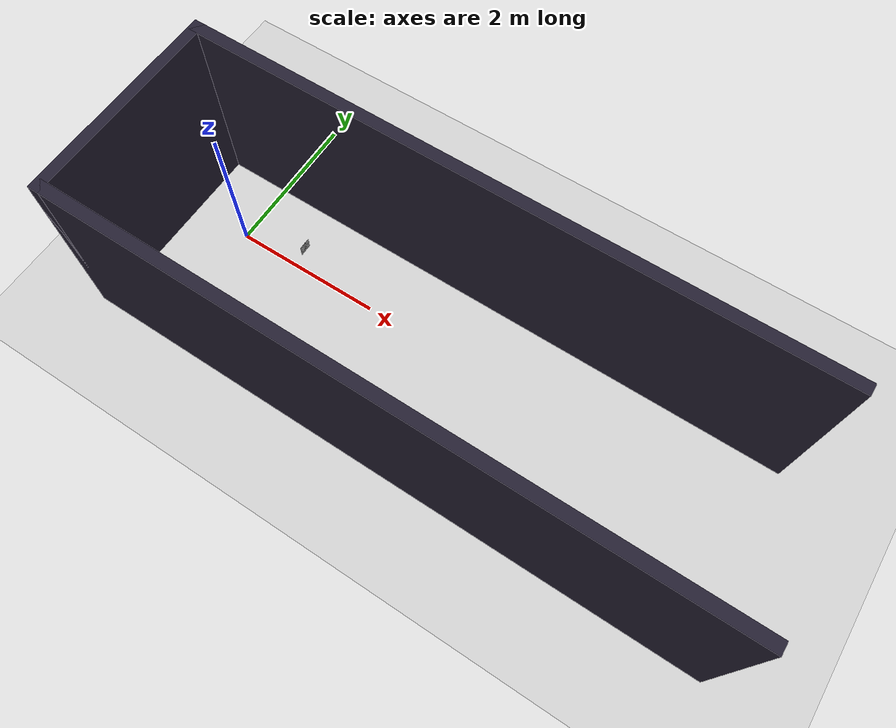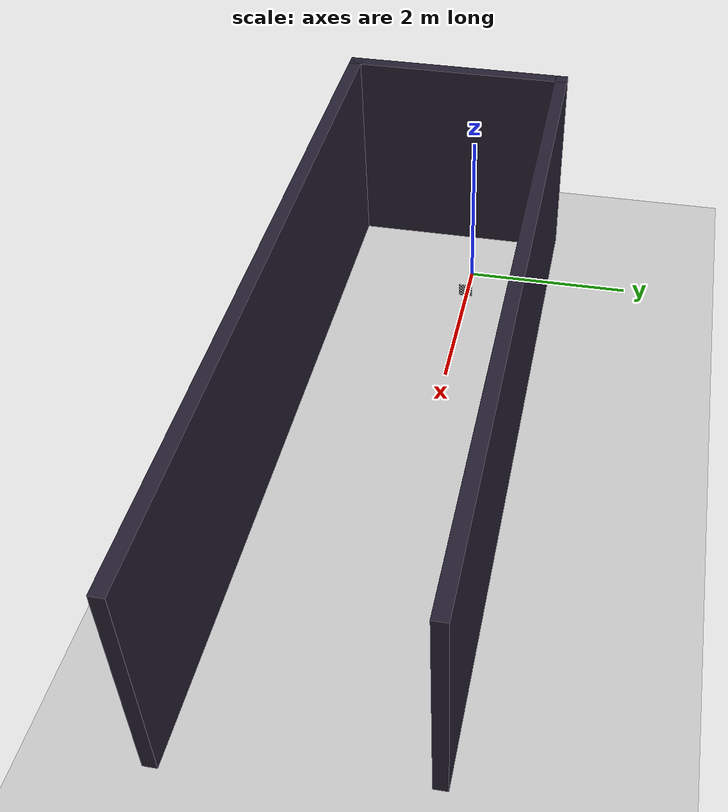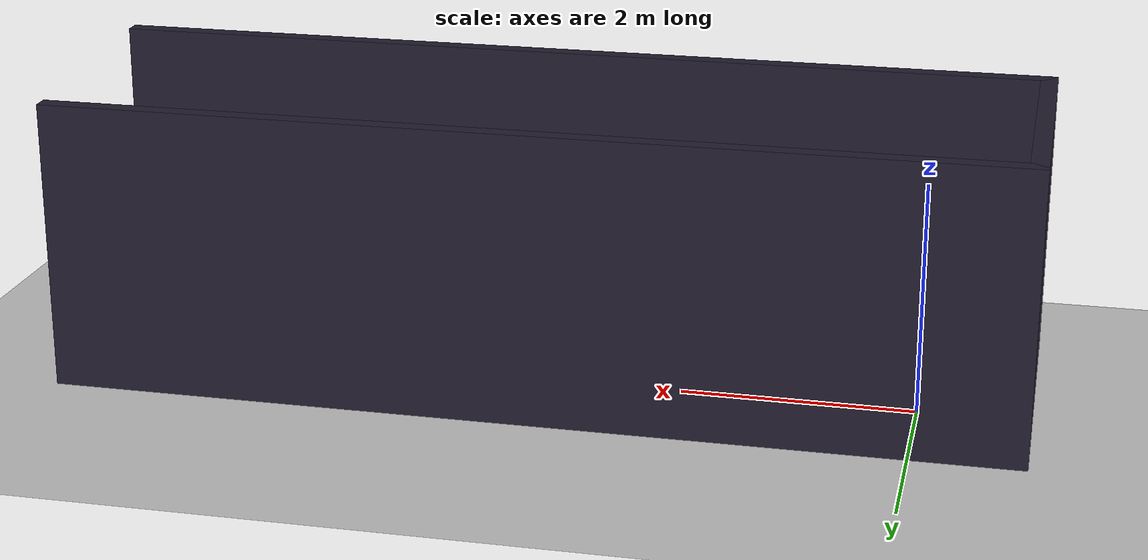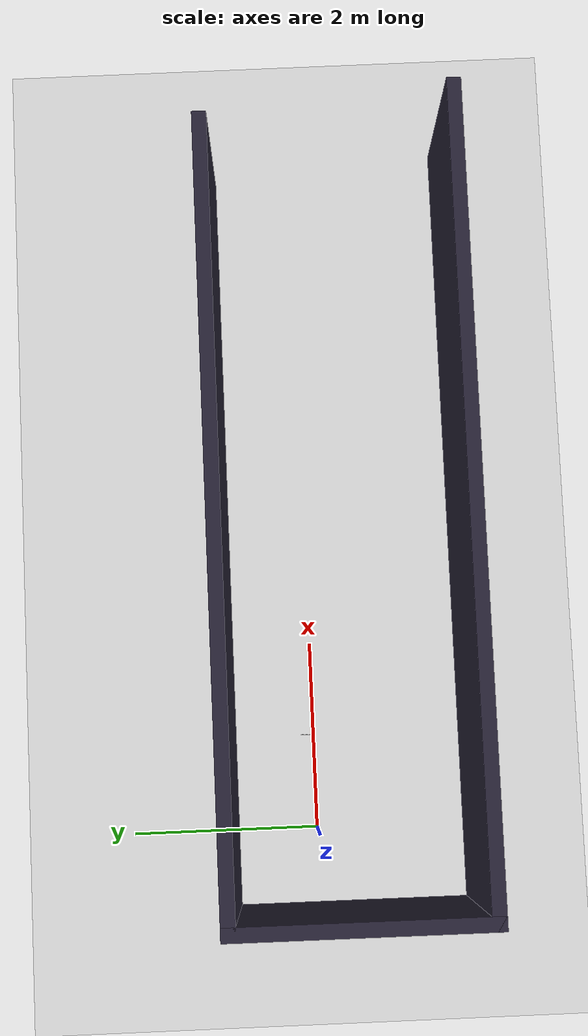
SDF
<sdf version="1.7">
 <world name="default">
  <scene>
   <sky><clouds><speed>12</speed></clouds></sky>
   <ambient>0.4 0.4 0.4 1</ambient>
   <background>0.7 0.7 0.7 1</background>
   <shadows>0</shadows>
  </scene>
  <light name="sun" type="directional">
   <pose>0 0 10 0 -0 0</pose>
   <diffuse>0.8 0.8 0.8 1</diffuse>
   <specular>0.2 0.2 0.2 1</specular>
   <attenuation>
    <range>1000</range>
    <constant>0.9</constant>
    <linear>0.01</linear>
    <quadratic>0.001</quadratic>
   </attenuation>
   <direction>-0.5 0.1 -0.9</direction>
   <spot><inner_angle>0</inner_angle><outer_angle>0</outer_angle><falloff>0</falloff></spot>
  </light>
  <model name="ground_plane">
   <static>1</static>
   <link name="link">
    <collision name="collision">
     <geometry><plane><normal>0 0 1</normal><size>100 100</size></plane></geometry>
     <surface><friction><ode><mu>100</mu><mu2>50</mu2></ode></friction></surface>
    </collision>
    <visual name="visual">
     <cast_shadows>0</cast_shadows>
     <geometry><plane><normal>0 0 1</normal><size>100 100</size></plane></geometry>
     <material>
      <script><uri>file://media/materials/scripts/gazebo.material</uri><name>Gazebo/Grey</name></script>
     </material>
    </visual>
   </link>
  </model>
  <model name="checkerboard">
   <pose>1 0 0.6 3.14159 1.57079 3.14159</pose>
   <static>1</static>
   <link name="checkerboard">
    <inertial>
     <mass>0.01</mass>
     <inertia><ixx>0.083</ixx><ixy>0</ixy><ixz>0</ixz><iyy>0.083</iyy><iyz>0</iyz><izz>0.083</izz></inertia>
    </inertial>
    <collision name="collision"><geometry><box><size>0.02 0.02 0.005</size></box></geometry></collision>
    <visual name="sqr11">
     <geometry><box><size>0.02 0.02 0.005</size></box></geometry>
     <material>
      <ambient>0 0 0 1</ambient>
      <diffuse>0 0 0 1</diffuse>
      <specular>0.1 0.1 0.1 1</specular>
      <emissive>0 0 0 0</emissive>
     </material>
    </visual>
    <visual name="sqr12">
     <pose>0.02 0 0 0 -0 0</pose>
     <geometry><box><size>0.02 0.02 0.005</size></box></geometry>
     <material>
      <ambient>1 1 1 1</ambient>
      <diffuse>1 1 1 1</diffuse>
      <specular>0.1 0.1 0.1 1</specular>
      <emissive>0 0 0 0</emissive>
     </material>
    </visual>
    <visual name="sqr13">
     <pose>0.04 0 0 0 -0 0</pose>
     <geometry><box><size>0.02 0.02 0.005</size></box></geometry>
     <material>
      <ambient>0 0 0 1</ambient>
      <diffuse>0 0 0 1</diffuse>
      <specular>0.1 0.1 0.1 1</specular>
      <emissive>0 0 0 0</emissive>
     </material>
    </visual>
    <visual name="sqr14">
     <pose>0.06 0 0 0 -0 0</pose>
     <geometry><box><size>0.02 0.02 0.005</size></box></geometry>
     <material>
      <ambient>1 1 1 1</ambient>
      <diffuse>1 1 1 1</diffuse>
      <specular>0.1 0.1 0.1 1</specular>
      <emissive>0 0 0 0</emissive>
     </material>
    </visual>
    <visual name="sqr15">
     <pose>0.08 0 0 0 -0 0</pose>
     <geometry><box><size>0.02 0.02 0.005</size></box></geometry>
     <material>
      <ambient>0 0 0 1</ambient>
      <diffuse>0 0 0 1</diffuse>
      <specular>0.1 0.1 0.1 1</specular>
      <emissive>0 0 0 0</emissive>
     </material>
    </visual>
    <visual name="sqr16">
     <pose>0.1 0 0 0 -0 0</pose>
     <geometry><box><size>0.02 0.02 0.005</size></box></geometry>
     <material>
      <ambient>1 1 1 1</ambient>
      <diffuse>1 1 1 1</diffuse>
      <specular>0.1 0.1 0.1 1</specular>
      <emissive>0 0 0 0</emissive>
     </material>
    </visual>
    <visual name="sqr17">
     <pose>0.12 0 0 0 -0 0</pose>
     <geometry><box><size>0.02 0.02 0.005</size></box></geometry>
     <material>
      <ambient>0 0 0 1</ambient>
      <diffuse>0 0 0 1</diffuse>
      <specular>0.1 0.1 0.1 1</specular>
      <emissive>0 0 0 0</emissive>
     </material>
    </visual>
    <visual name="sqr18">
     <pose>0.14 0 0 0 -0 0</pose>
     <geometry><box><size>0.02 0.02 0.005</size></box></geometry>
     <material>
      <ambient>1 1 1 1</ambient>
      <diffuse>1 1 1 1</diffuse>
      <specular>0.1 0.1 0.1 1</specular>
      <emissive>0 0 0 0</emissive>
     </material>
    </visual>
    <visual name="sqr21">
     <pose>0 0.02 0 0 -0 0</pose>
     <geometry><box><size>0.02 0.02 0.005</size></box></geometry>
     <material>
      <ambient>1 1 1 1</ambient>
      <diffuse>1 1 1 1</diffuse>
      <specular>0.1 0.1 0.1 1</specular>
      <emissive>0 0 0 0</emissive>
     </material>
    </visual>
    <visual name="sqr22">
     <pose>0.02 0.02 0 0 -0 0</pose>
     <geometry><box><size>0.02 0.02 0.005</size></box></geometry>
     <material>
      <ambient>0 0 0 1</ambient>
      <diffuse>0 0 0 1</diffuse>
      <specular>0.1 0.1 0.1 1</specular>
      <emissive>0 0 0 0</emissive>
     </material>
    </visual>
    <visual name="sqr23">
     <pose>0.04 0.02 0 0 -0 0</pose>
     <geometry><box><size>0.02 0.02 0.005</size></box></geometry>
     <material>
      <ambient>1 1 1 1</ambient>
      <diffuse>1 1 1 1</diffuse>
      <specular>0.1 0.1 0.1 1</specular>
      <emissive>0 0 0 0</emissive>
     </material>
    </visual>
    <visual name="sqr24">
     <pose>0.06 0.02 0 0 -0 0</pose>
     <geometry><box><size>0.02 0.02 0.005</size></box></geometry>
     <material>
      <ambient>0 0 0 1</ambient>
      <diffuse>0 0 0 1</diffuse>
      <specular>0.1 0.1 0.1 1</specular>
      <emissive>0 0 0 0</emissive>
     </material>
    </visual>
    <visual name="sqr25">
     <pose>0.08 0.02 0 0 -0 0</pose>
     <geometry><box><size>0.02 0.02 0.005</size></box></geometry>
     <material>
      <ambient>1 1 1 1</ambient>
      <diffuse>1 1 1 1</diffuse>
      <specular>0.1 0.1 0.1 1</specular>
      <emissive>0 0 0 0</emissive>
     </material>
    </visual>
    <visual name="sqr26">
     <pose>0.1 0.02 0 0 -0 0</pose>
     <geometry><box><size>0.02 0.02 0.005</size></box></geometry>
     <material>
      <ambient>0 0 0 1</ambient>
      <diffuse>0 0 0 1</diffuse>
      <specular>0.1 0.1 0.1 1</specular>
      <emissive>0 0 0 0</emissive>
     </material>
    </visual>
    <visual name="sqr27">
     <pose>0.12 0.02 0 0 -0 0</pose>
     <geometry><box><size>0.02 0.02 0.005</size></box></geometry>
     <material>
      <ambient>1 1 1 1</ambient>
      <diffuse>1 1 1 1</diffuse>
      <specular>0.1 0.1 0.1 1</specular>
      <emissive>0 0 0 0</emissive>
     </material>
    </visual>
    <visual name="sqr28">
     <pose>0.14 0.02 0 0 -0 0</pose>
     <geometry><box><size>0.02 0.02 0.005</size></box></geometry>
     <material>
      <ambient>0 0 0 1</ambient>
      <diffuse>0 0 0 1</diffuse>
      <specular>0.1 0.1 0.1 1</specular>
      <emissive>0 0 0 0</emissive>
     </material>
    </visual>
    <visual name="sqr31">
     <pose>0 0.04 0 0 -0 0</pose>
     <geometry><box><size>0.02 0.02 0.005</size></box></geometry>
     <material>
      <ambient>0 0 0 1</ambient>
      <diffuse>0 0 0 1</diffuse>
      <specular>0.1 0.1 0.1 1</specular>
      <emissive>0 0 0 0</emissive>
     </material>
    </visual>
    <visual name="sqr32">
     <pose>0.02 0.04 0 0 -0 0</pose>
     <geometry><box><size>0.02 0.02 0.005</size></box></geometry>
     <material>
      <ambient>1 1 1 1</ambient>
      <diffuse>1 1 1 1</diffuse>
      <specular>0.1 0.1 0.1 1</specular>
      <emissive>0 0 0 0</emissive>
     </material>
    </visual>
    <visual name="sqr33">
     <pose>0.04 0.04 0 0 -0 0</pose>
     <geometry><box><size>0.02 0.02 0.005</size></box></geometry>
     <material>
      <ambient>0 0 0 1</ambient>
      <diffuse>0 0 0 1</diffuse>
      <specular>0.1 0.1 0.1 1</specular>
      <emissive>0 0 0 0</emissive>
     </material>
    </visual>
    <visual name="sqr34">
     <pose>0.06 0.04 0 0 -0 0</pose>
     <geometry><box><size>0.02 0.02 0.005</size></box></geometry>
     <material>
      <ambient>1 1 1 1</ambient>
      <diffuse>1 1 1 1</diffuse>
      <specular>0.1 0.1 0.1 1</specular>
      <emissive>0 0 0 0</emissive>
     </material>
    </visual>
    <visual name="sqr35">
     <pose>0.08 0.04 0 0 -0 0</pose>
     <geometry><box><size>0.02 0.02 0.005</size></box></geometry>
     <material>
      <ambient>0 0 0 1</ambient>
      <diffuse>0 0 0 1</diffuse>
      <specular>0.1 0.1 0.1 1</specular>
      <emissive>0 0 0 0</emissive>
     </material>
    </visual>
    <visual name="sqr36">
     <pose>0.1 0.04 0 0 -0 0</pose>
     <geometry><box><size>0.02 0.02 0.005</size></box></geometry>
     <material>
      <ambient>1 1 1 1</ambient>
      <diffuse>1 1 1 1</diffuse>
      <specular>0.1 0.1 0.1 1</specular>
      <emissive>0 0 0 0</emissive>
     </material>
    </visual>
    <visual name="sqr37">
     <pose>0.12 0.04 0 0 -0 0</pose>
     <geometry><box><size>0.02 0.02 0.005</size></box></geometry>
     <material>
      <ambient>0 0 0 1</ambient>
      <diffuse>0 0 0 1</diffuse>
      <specular>0.1 0.1 0.1 1</specular>
      <emissive>0 0 0 0</emissive>
     </material>
    </visual>
    <visual name="sqr38">
     <pose>0.14 0.04 0 0 -0 0</pose>
     <geometry><box><size>0.02 0.02 0.005</size></box></geometry>
     <material>
      <ambient>1 1 1 1</ambient>
      <diffuse>1 1 1 1</diffuse>
      <specular>0.1 0.1 0.1 1</specular>
      <emissive>0 0 0 0</emissive>
     </material>
    </visual>
    <visual name="sqr51">
     <pose>0 0.08 0 0 -0 0</pose>
     <geometry><box><size>0.02 0.02 0.005</size></box></geometry>
     <material>
      <ambient>0 0 0 1</ambient>
      <diffuse>0 0 0 1</diffuse>
      <specular>0.1 0.1 0.1 1</specular>
      <emissive>0 0 0 0</emissive>
     </material>
    </visual>
    <visual name="sqr52">
     <pose>0.02 0.08 0 0 -0 0</pose>
     <geometry><box><size>0.02 0.02 0.005</size></box></geometry>
     <material>
      <ambient>1 1 1 1</ambient>
      <diffuse>1 1 1 1</diffuse>
      <specular>0.1 0.1 0.1 1</specular>
      <emissive>0 0 0 0</emissive>
     </material>
    </visual>
    <visual name="sqr53">
     <pose>0.04 0.08 0 0 -0 0</pose>
     <geometry><box><size>0.02 0.02 0.005</size></box></geometry>
     <material>
      <ambient>0 0 0 1</ambient>
      <diffuse>0 0 0 1</diffuse>
      <specular>0.1 0.1 0.1 1</specular>
      <emissive>0 0 0 0</emissive>
     </material>
    </visual>
    <visual name="sqr54">
     <pose>0.06 0.08 0 0 -0 0</pose>
     <geometry><box><size>0.02 0.02 0.005</size></box></geometry>
     <material>
      <ambient>1 1 1 1</ambient>
      <diffuse>1 1 1 1</diffuse>
      <specular>0.1 0.1 0.1 1</specular>
      <emissive>0 0 0 0</emissive>
     </material>
    </visual>
    <visual name="sqr55">
     <pose>0.08 0.08 0 0 -0 0</pose>
     <geometry><box><size>0.02 0.02 0.005</size></box></geometry>
     <material>
      <ambient>0 0 0 1</ambient>
      <diffuse>0 0 0 1</diffuse>
      <specular>0.1 0.1 0.1 1</specular>
      <emissive>0 0 0 0</emissive>
     </material>
    </visual>
    <visual name="sqr56">
     <pose>0.1 0.08 0 0 -0 0</pose>
     <geometry><box><size>0.02 0.02 0.005</size></box></geometry>
     <material>
      <ambient>1 1 1 1</ambient>
      <diffuse>1 1 1 1</diffuse>
      <specular>0.1 0.1 0.1 1</specular>
      <emissive>0 0 0 0</emissive>
     </material>
    </visual>
    <visual name="sqr57">
     <pose>0.12 0.08 0 0 -0 0</pose>
     <geometry><box><size>0.02 0.02 0.005</size></box></geometry>
     <material>
      <ambient>0 0 0 1</ambient>
      <diffuse>0 0 0 1</diffuse>
      <specular>0.1 0.1 0.1 1</specular>
      <emissive>0 0 0 0</emissive>
     </material>
    </visual>
    <visual name="sqr58">
     <pose>0.14 0.08 0 0 -0 0</pose>
     <geometry><box><size>0.02 0.02 0.005</size></box></geometry>
     <material>
      <ambient>1 1 1 1</ambient>
      <diffuse>1 1 1 1</diffuse>
      <specular>0.1 0.1 0.1 1</specular>
      <emissive>0 0 0 0</emissive>
     </material>
    </visual>
    <visual name="sqr71">
     <pose>0 0.12 0 0 -0 0</pose>
     <geometry><box><size>0.02 0.02 0.005</size></box></geometry>
     <material>
      <ambient>0 0 0 1</ambient>
      <diffuse>0 0 0 1</diffuse>
      <specular>0.1 0.1 0.1 1</specular>
      <emissive>0 0 0 0</emissive>
     </material>
    </visual>
    <visual name="sqr72">
     <pose>0.02 0.12 0 0 -0 0</pose>
     <geometry><box><size>0.02 0.02 0.005</size></box></geometry>
     <material>
      <ambient>1 1 1 1</ambient>
      <diffuse>1 1 1 1</diffuse>
      <specular>0.1 0.1 0.1 1</specular>
      <emissive>0 0 0 0</emissive>
     </material>
    </visual>
    <visual name="sqr73">
     <pose>0.04 0.12 0 0 -0 0</pose>
     <geometry><box><size>0.02 0.02 0.005</size></box></geometry>
     <material>
      <ambient>0 0 0 1</ambient>
      <diffuse>0 0 0 1</diffuse>
      <specular>0.1 0.1 0.1 1</specular>
      <emissive>0 0 0 0</emissive>
     </material>
    </visual>
    <visual name="sqr74">
     <pose>0.06 0.12 0 0 -0 0</pose>
     <geometry><box><size>0.02 0.02 0.005</size></box></geometry>
     <material>
      <ambient>1 1 1 1</ambient>
      <diffuse>1 1 1 1</diffuse>
      <specular>0.1 0.1 0.1 1</specular>
      <emissive>0 0 0 0</emissive>
     </material>
    </visual>
    <visual name="sqr75">
     <pose>0.08 0.12 0 0 -0 0</pose>
     <geometry><box><size>0.02 0.02 0.005</size></box></geometry>
     <material>
      <ambient>0 0 0 1</ambient>
      <diffuse>0 0 0 1</diffuse>
      <specular>0.1 0.1 0.1 1</specular>
      <emissive>0 0 0 0</emissive>
     </material>
    </visual>
    <visual name="sqr76">
     <pose>0.1 0.12 0 0 -0 0</pose>
     <geometry><box><size>0.02 0.02 0.005</size></box></geometry>
     <material>
      <ambient>1 1 1 1</ambient>
      <diffuse>1 1 1 1</diffuse>
      <specular>0.1 0.1 0.1 1</specular>
      <emissive>0 0 0 0</emissive>
     </material>
    </visual>
    <visual name="sqr77">
     <pose>0.12 0.12 0 0 -0 0</pose>
     <geometry><box><size>0.02 0.02 0.005</size></box></geometry>
     <material>
      <ambient>0 0 0 1</ambient>
      <diffuse>0 0 0 1</diffuse>
      <specular>0.1 0.1 0.1 1</specular>
      <emissive>0 0 0 0</emissive>
     </material>
    </visual>
    <visual name="sqr78">
     <pose>0.14 0.12 0 0 -0 0</pose>
     <geometry><box><size>0.02 0.02 0.005</size></box></geometry>
     <material>
      <ambient>1 1 1 1</ambient>
      <diffuse>1 1 1 1</diffuse>
      <specular>0.1 0.1 0.1 1</specular>
      <emissive>0 0 0 0</emissive>
     </material>
    </visual>
    <visual name="sqr81">
     <pose>0 0.14 0 0 -0 0</pose>
     <geometry><box><size>0.02 0.02 0.005</size></box></geometry>
     <material>
      <ambient>1 1 1 1</ambient>
      <diffuse>1 1 1 1</diffuse>
      <specular>0.1 0.1 0.1 1</specular>
      <emissive>0 0 0 0</emissive>
     </material>
    </visual>
    <visual name="sqr82">
     <pose>0.02 0.14 0 0 -0 0</pose>
     <geometry><box><size>0.02 0.02 0.005</size></box></geometry>
     <material>
      <ambient>0 0 0 1</ambient>
      <diffuse>0 0 0 1</diffuse>
      <specular>0.1 0.1 0.1 1</specular>
      <emissive>0 0 0 0</emissive>
     </material>
    </visual>
    <visual name="sqr83">
     <pose>0.04 0.14 0 0 -0 0</pose>
     <geometry><box><size>0.02 0.02 0.005</size></box></geometry>
     <material>
      <ambient>1 1 1 1</ambient>
      <diffuse>1 1 1 1</diffuse>
      <specular>0.1 0.1 0.1 1</specular>
      <emissive>0 0 0 0</emissive>
     </material>
    </visual>
    <visual name="sqr84">
     <pose>0.06 0.14 0 0 -0 0</pose>
     <geometry><box><size>0.02 0.02 0.005</size></box></geometry>
     <material>
      <ambient>0 0 0 1</ambient>
      <diffuse>0 0 0 1</diffuse>
      <specular>0.1 0.1 0.1 1</specular>
      <emissive>0 0 0 0</emissive>
     </material>
    </visual>
    <visual name="sqr85">
     <pose>0.08 0.14 0 0 -0 0</pose>
     <geometry><box><size>0.02 0.02 0.005</size></box></geometry>
     <material>
      <ambient>1 1 1 1</ambient>
      <diffuse>1 1 1 1</diffuse>
      <specular>0.1 0.1 0.1 1</specular>
      <emissive>0 0 0 0</emissive>
     </material>
    </visual>
    <visual name="sqr86">
     <pose>0.1 0.14 0 0 -0 0</pose>
     <geometry><box><size>0.02 0.02 0.005</size></box></geometry>
     <material>
      <ambient>0 0 0 1</ambient>
      <diffuse>0 0 0 1</diffuse>
      <specular>0.1 0.1 0.1 1</specular>
      <emissive>0 0 0 0</emissive>
     </material>
    </visual>
    <visual name="sqr87">
     <pose>0.12 0.14 0 0 -0 0</pose>
     <geometry><box><size>0.02 0.02 0.005</size></box></geometry>
     <material>
      <ambient>1 1 1 1</ambient>
      <diffuse>1 1 1 1</diffuse>
      <specular>0.1 0.1 0.1 1</specular>
      <emissive>0 0 0 0</emissive>
     </material>
    </visual>
    <visual name="sqr88">
     <pose>0.14 0.14 0 0 -0 0</pose>
     <geometry><box><size>0.02 0.02 0.005</size></box></geometry>
     <material>
      <ambient>0 0 0 1</ambient>
      <diffuse>0 0 0 1</diffuse>
      <specular>0.1 0.1 0.1 1</specular>
      <emissive>0 0 0 0</emissive>
     </material>
    </visual>
    <visual name="sqr41">
     <pose>0 0.06 0 0 -0 0</pose>
     <geometry><box><size>0.02 0.02 0.005</size></box></geometry>
     <material>
      <ambient>1 1 1 1</ambient>
      <diffuse>1 1 1 1</diffuse>
      <specular>0.1 0.1 0.1 1</specular>
      <emissive>0 0 0 0</emissive>
     </material>
    </visual>
    <visual name="sqr42">
     <pose>0.02 0.06 0 0 -0 0</pose>
     <geometry><box><size>0.02 0.02 0.005</size></box></geometry>
     <material>
      <ambient>0 0 0 1</ambient>
      <diffuse>0 0 0 1</diffuse>
      <specular>0.1 0.1 0.1 1</specular>
      <emissive>0 0 0 0</emissive>
     </material>
    </visual>
    <visual name="sqr43">
     <pose>0.04 0.06 0 0 -0 0</pose>
     <geometry><box><size>0.02 0.02 0.005</size></box></geometry>
     <material>
      <ambient>1 1 1 1</ambient>
      <diffuse>1 1 1 1</diffuse>
      <specular>0.1 0.1 0.1 1</specular>
      <emissive>0 0 0 0</emissive>
     </material>
    </visual>
    <visual name="sqr44">
     <pose>0.06 0.06 0 0 -0 0</pose>
     <geometry><box><size>0.02 0.02 0.005</size></box></geometry>
     <material>
      <ambient>0 0 0 1</ambient>
      <diffuse>0 0 0 1</diffuse>
      <specular>0.1 0.1 0.1 1</specular>
      <emissive>0 0 0 0</emissive>
     </material>
    </visual>
    <visual name="sqr45">
     <pose>0.08 0.06 0 0 -0 0</pose>
     <geometry><box><size>0.02 0.02 0.005</size></box></geometry>
     <material>
      <ambient>1 1 1 1</ambient>
      <diffuse>1 1 1 1</diffuse>
      <specular>0.1 0.1 0.1 1</specular>
      <emissive>0 0 0 0</emissive>
     </material>
    </visual>
    <visual name="sqr46">
     <pose>0.1 0.06 0 0 -0 0</pose>
     <geometry><box><size>0.02 0.02 0.005</size></box></geometry>
     <material>
      <ambient>0 0 0 1</ambient>
      <diffuse>0 0 0 1</diffuse>
      <specular>0.1 0.1 0.1 1</specular>
      <emissive>0 0 0 0</emissive>
     </material>
    </visual>
    <visual name="sqr47">
     <pose>0.12 0.06 0 0 -0 0</pose>
     <geometry><box><size>0.02 0.02 0.005</size></box></geometry>
     <material>
      <ambient>1 1 1 1</ambient>
      <diffuse>1 1 1 1</diffuse>
      <specular>0.1 0.1 0.1 1</specular>
      <emissive>0 0 0 0</emissive>
     </material>
    </visual>
    <visual name="sqr48">
     <pose>0.14 0.06 0 0 -0 0</pose>
     <geometry><box><size>0.02 0.02 0.005</size></box></geometry>
     <material>
      <ambient>0 0 0 1</ambient>
      <diffuse>0 0 0 1</diffuse>
      <specular>0.1 0.1 0.1 1</specular>
      <emissive>0 0 0 0</emissive>
     </material>
    </visual>
    <visual name="sqr61">
     <pose>0 0.1 0 0 -0 0</pose>
     <geometry><box><size>0.02 0.02 0.005</size></box></geometry>
     <material>
      <ambient>1 1 1 1</ambient>
      <diffuse>1 1 1 1</diffuse>
      <specular>0.1 0.1 0.1 1</specular>
      <emissive>0 0 0 0</emissive>
     </material>
    </visual>
    <visual name="sqr62">
     <pose>0.02 0.1 0 0 -0 0</pose>
     <geometry><box><size>0.02 0.02 0.005</size></box></geometry>
     <material>
      <ambient>0 0 0 1</ambient>
      <diffuse>0 0 0 1</diffuse>
      <specular>0.1 0.1 0.1 1</specular>
      <emissive>0 0 0 0</emissive>
     </material>
    </visual>
    <visual name="sqr63">
     <pose>0.04 0.1 0 0 -0 0</pose>
     <geometry><box><size>0.02 0.02 0.005</size></box></geometry>
     <material>
      <ambient>1 1 1 1</ambient>
      <diffuse>1 1 1 1</diffuse>
      <specular>0.1 0.1 0.1 1</specular>
      <emissive>0 0 0 0</emissive>
     </material>
    </visual>
    <visual name="sqr64">
     <pose>0.06 0.1 0 0 -0 0</pose>
     <geometry><box><size>0.02 0.02 0.005</size></box></geometry>
     <material>
      <ambient>0 0 0 1</ambient>
      <diffuse>0 0 0 1</diffuse>
      <specular>0.1 0.1 0.1 1</specular>
      <emissive>0 0 0 0</emissive>
     </material>
    </visual>
    <visual name="sqr65">
     <pose>0.08 0.1 0 0 -0 0</pose>
     <geometry><box><size>0.02 0.02 0.005</size></box></geometry>
     <material>
      <ambient>1 1 1 1</ambient>
      <diffuse>1 1 1 1</diffuse>
      <specular>0.1 0.1 0.1 1</specular>
      <emissive>0 0 0 0</emissive>
     </material>
    </visual>
    <visual name="sqr66">
     <pose>0.1 0.1 0 0 -0 0</pose>
     <geometry><box><size>0.02 0.02 0.005</size></box></geometry>
     <material>
      <ambient>0 0 0 1</ambient>
      <diffuse>0 0 0 1</diffuse>
      <specular>0.1 0.1 0.1 1</specular>
      <emissive>0 0 0 0</emissive>
     </material>
    </visual>
    <visual name="sqr67">
     <pose>0.12 0.1 0 0 -0 0</pose>
     <geometry><box><size>0.02 0.02 0.005</size></box></geometry>
     <material>
      <ambient>1 1 1 1</ambient>
      <diffuse>1 1 1 1</diffuse>
      <specular>0.1 0.1 0.1 1</specular>
      <emissive>0 0 0 0</emissive>
     </material>
    </visual>
    <visual name="sqr68">
     <pose>0.14 0.1 0 0 -0 0</pose>
     <geometry><box><size>0.02 0.02 0.005</size></box></geometry>
     <material>
      <ambient>0 0 0 1</ambient>
      <diffuse>0 0 0 1</diffuse>
      <specular>0.1 0.1 0.1 1</specular>
      <emissive>0 0 0 0</emissive>
     </material>
    </visual>
   </link>
  </model>
  <gravity>0 0 -9.8</gravity>
  <magnetic_field>6e-06 2.3e-05 -4.2e-05</magnetic_field>
  <atmosphere type="adiabatic"/>
  <physics type="ode">
   <max_step_size>0.001</max_step_size>
   <real_time_factor>1</real_time_factor>
   <real_time_update_rate>1000</real_time_update_rate>
  </physics>
  <audio><device>default</device></audio>
  <spherical_coordinates>
   <surface_model>EARTH_WGS84</surface_model>
   <latitude_deg>0</latitude_deg>
   <longitude_deg>0</longitude_deg>
   <elevation>0</elevation>
   <heading_deg>0</heading_deg>
  </spherical_coordinates>
  <model name="Untitled">
   <pose>3.285 -4.2275 0 0 -0 3.14</pose>
   <link name="Wall_5">
    <collision name="Wall_5_Collision">
     <geometry><box><size>8.5 0.15 2.5</size></box></geometry>
     <pose>0 0 1.25 0 -0 0</pose>
    </collision>
    <visual name="Wall_5_Visual">
     <pose>0 0 1.25 0 -0 0</pose>
     <geometry><box><size>8.5 0.15 2.5</size></box></geometry>
     <material>
      <script><uri>file://media/materials/scripts/gazebo.material</uri><name>Gazebo/Grey</name></script>
      <ambient>0.141176 0.121569 0.192157 1</ambient>
     </material>
     <meta><layer>0</layer></meta>
    </visual>
    <pose>-0 -2.5525 0 0 -0 0</pose>
   </link>
   <link name="Wall_6">
    <collision name="Wall_6_Collision">
     <geometry><box><size>2.75 0.15 2.5</size></box></geometry>
     <pose>0 0 1.25 0 -0 0</pose>
    </collision>
    <visual name="Wall_6_Visual">
     <pose>0 0 1.25 0 -0 0</pose>
     <geometry><box><size>2.75 0.15 2.5</size></box></geometry>
     <material>
      <script><uri>file://media/materials/scripts/gazebo.material</uri><name>Gazebo/Grey</name></script>
      <ambient>0.141176 0.121569 0.192157 1</ambient>
     </material>
     <meta><layer>0</layer></meta>
    </visual>
    <pose>4.175 -3.8525 0 0 -0 -1.5708</pose>
   </link>
   <link name="Wall_7">
    <collision name="Wall_7_Collision">
     <geometry><box><size>8.25 0.15 2.5</size></box></geometry>
     <pose>0 0 1.25 0 -0 0</pose>
    </collision>
    <visual name="Wall_7_Visual">
     <pose>0 0 1.25 0 -0 0</pose>
     <geometry><box><size>8.25 0.15 2.5</size></box></geometry>
     <material>
      <script><uri>file://media/materials/scripts/gazebo.material</uri><name>Gazebo/Grey</name></script>
      <ambient>0.141176 0.121569 0.192157 1</ambient>
     </material>
     <meta><layer>0</layer></meta>
    </visual>
    <pose>0.125 -5.1525 0 0 -0 3.14159</pose>
   </link>
   <static>1</static>
  </model>
 </world>
</sdf>
